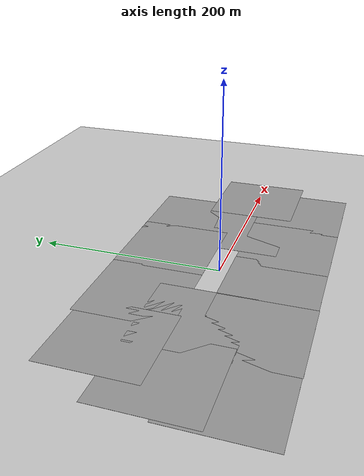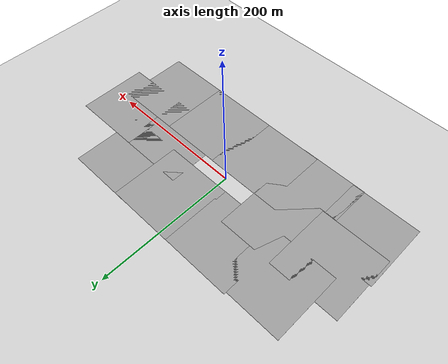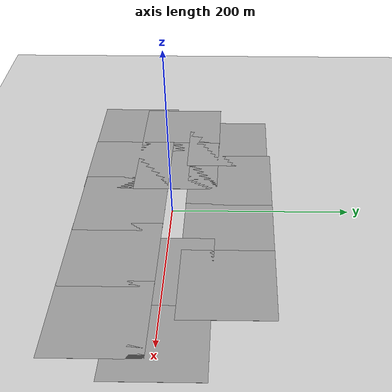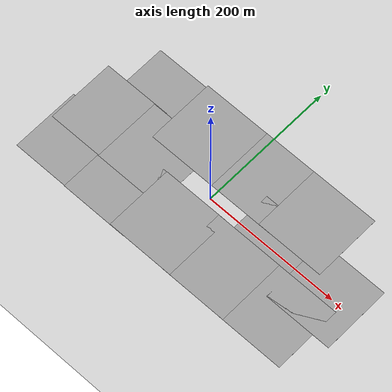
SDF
<sdf version="1.6">
 <world name="default">
  <light name="sun" type="directional">
   <pose>0 0 10 0 -0 0</pose>
   <diffuse>0.8 0.8 0.8 1</diffuse>
   <specular>0.2 0.2 0.2 1</specular>
   <attenuation>
    <range>1000</range>
    <constant>0.9</constant>
    <linear>0.01</linear>
    <quadratic>0.001</quadratic>
   </attenuation>
   <direction>-0.5 0.1 -0.9</direction>
  </light>
  <model name="ground_plane">
   <static>1</static>
   <link name="link">
    <collision name="collision">
     <geometry><plane><normal>0 0 1</normal><size>100 100</size></plane></geometry>
     <surface><friction><ode><mu>100</mu><mu2>50</mu2></ode></friction></surface>
    </collision>
    <visual name="visual">
     <cast_shadows>0</cast_shadows>
     <geometry><plane><normal>0 0 1</normal><size>100 100</size></plane></geometry>
     <material>
      <script><uri>file://media/materials/scripts/gazebo.material</uri><name>Gazebo/Grey</name></script>
     </material>
    </visual>
   </link>
  </model>
  <gravity>0 0 -9.8</gravity>
  <magnetic_field>6e-06 2.3e-05 -4.2e-05</magnetic_field>
  <atmosphere type="adiabatic"/>
  <physics name="default_physics" default="0" type="ode">
   <max_step_size>0.001</max_step_size>
   <real_time_factor>1</real_time_factor>
   <real_time_update_rate>1000</real_time_update_rate>
  </physics>
  <scene><ambient>0.4 0.4 0.4 1</ambient><background>0.7 0.7 0.7 1</background><shadows>1</shadows></scene>
  <audio><device>default</device></audio>
  <spherical_coordinates>
   <surface_model>EARTH_WGS84</surface_model>
   <latitude_deg>0</latitude_deg>
   <longitude_deg>0</longitude_deg>
   <elevation>0</elevation>
   <heading_deg>0</heading_deg>
  </spherical_coordinates>
  <model name="ground_plane_0">
   <static>1</static>
   <link name="link">
    <collision name="collision">
     <geometry><plane><normal>0 0 1</normal><size>100 100</size></plane></geometry>
     <surface>
      <contact><collide_bitmask>65535</collide_bitmask></contact>
      <friction><ode><mu>100</mu><mu2>50</mu2></ode></friction>
     </surface>
    </collision>
    <visual name="visual">
     <cast_shadows>0</cast_shadows>
     <geometry><plane><normal>0 0 1</normal><size>100 100</size></plane></geometry>
     <material>
      <script><uri>file://media/materials/scripts/gazebo.material</uri><name>Gazebo/Grey</name></script>
     </material>
    </visual>
   </link>
   <pose>97.4903 0.04793 0 0 -0 0</pose>
  </model>
  <model name="ground_plane_1">
   <static>1</static>
   <link name="link">
    <collision name="collision">
     <geometry><plane><normal>0 0 1</normal><size>100 100</size></plane></geometry>
     <surface>
      <contact><collide_bitmask>65535</collide_bitmask></contact>
      <friction><ode><mu>100</mu><mu2>50</mu2></ode></friction>
     </surface>
    </collision>
    <visual name="visual">
     <cast_shadows>0</cast_shadows>
     <geometry><plane><normal>0 0 1</normal><size>100 100</size></plane></geometry>
     <material>
      <script><uri>file://media/materials/scripts/gazebo.material</uri><name>Gazebo/Grey</name></script>
     </material>
    </visual>
   </link>
   <pose>189.307 -0.037702 0 0 -0 0</pose>
  </model>
  <model name="ground_plane_2">
   <static>1</static>
   <link name="link">
    <collision name="collision">
     <geometry><plane><normal>0 0 1</normal><size>100 100</size></plane></geometry>
     <surface>
      <contact><collide_bitmask>65535</collide_bitmask></contact>
      <friction><ode><mu>100</mu><mu2>50</mu2></ode></friction>
     </surface>
    </collision>
    <visual name="visual">
     <cast_shadows>0</cast_shadows>
     <geometry><plane><normal>0 0 1</normal><size>100 100</size></plane></geometry>
     <material>
      <script><uri>file://media/materials/scripts/gazebo.material</uri><name>Gazebo/Grey</name></script>
     </material>
    </visual>
   </link>
   <pose>-91.6707 -0.132647 0 0 -0 0</pose>
  </model>
  <model name="ground_plane_3">
   <static>1</static>
   <link name="link">
    <collision name="collision">
     <geometry><plane><normal>0 0 1</normal><size>100 100</size></plane></geometry>
     <surface>
      <contact><collide_bitmask>65535</collide_bitmask></contact>
      <friction><ode><mu>100</mu><mu2>50</mu2></ode></friction>
     </surface>
    </collision>
    <visual name="visual">
     <cast_shadows>0</cast_shadows>
     <geometry><plane><normal>0 0 1</normal><size>100 100</size></plane></geometry>
     <material>
      <script><uri>file://media/materials/scripts/gazebo.material</uri><name>Gazebo/Grey</name></script>
     </material>
    </visual>
   </link>
   <pose>-171.755 0.416002 0 0 -0 0</pose>
  </model>
  <model name="ground_plane_4">
   <static>1</static>
   <link name="link">
    <collision name="collision">
     <geometry><plane><normal>0 0 1</normal><size>100 100</size></plane></geometry>
     <surface>
      <contact><collide_bitmask>65535</collide_bitmask></contact>
      <friction><ode><mu>100</mu><mu2>50</mu2></ode></friction>
     </surface>
    </collision>
    <visual name="visual">
     <cast_shadows>0</cast_shadows>
     <geometry><plane><normal>0 0 1</normal><size>100 100</size></plane></geometry>
     <material>
      <script><uri>file://media/materials/scripts/gazebo.material</uri><name>Gazebo/Grey</name></script>
     </material>
    </visual>
   </link>
   <pose>-92.4556 -59.0521 0 0 -0 0</pose>
  </model>
  <model name="ground_plane_5">
   <static>1</static>
   <link name="link">
    <collision name="collision">
     <geometry><plane><normal>0 0 1</normal><size>100 100</size></plane></geometry>
     <surface>
      <contact><collide_bitmask>65535</collide_bitmask></contact>
      <friction><ode><mu>100</mu><mu2>50</mu2></ode></friction>
     </surface>
    </collision>
    <visual name="visual">
     <cast_shadows>0</cast_shadows>
     <geometry><plane><normal>0 0 1</normal><size>100 100</size></plane></geometry>
     <material>
      <script><uri>file://media/materials/scripts/gazebo.material</uri><name>Gazebo/Grey</name></script>
     </material>
    </visual>
   </link>
   <pose>-14.8442 -58.6163 0 0 -0 0</pose>
  </model>
  <model name="ground_plane_6">
   <static>1</static>
   <link name="link">
    <collision name="collision">
     <geometry><plane><normal>0 0 1</normal><size>100 100</size></plane></geometry>
     <surface>
      <contact><collide_bitmask>65535</collide_bitmask></contact>
      <friction><ode><mu>100</mu><mu2>50</mu2></ode></friction>
     </surface>
    </collision>
    <visual name="visual">
     <cast_shadows>0</cast_shadows>
     <geometry><plane><normal>0 0 1</normal><size>100 100</size></plane></geometry>
     <material>
      <script><uri>file://media/materials/scripts/gazebo.material</uri><name>Gazebo/Grey</name></script>
     </material>
    </visual>
   </link>
   <pose>72.4819 -58.7857 0 0 -0 0</pose>
  </model>
  <model name="ground_plane_7">
   <static>1</static>
   <link name="link">
    <collision name="collision">
     <geometry><plane><normal>0 0 1</normal><size>100 100</size></plane></geometry>
     <surface>
      <contact><collide_bitmask>65535</collide_bitmask></contact>
      <friction><ode><mu>100</mu><mu2>50</mu2></ode></friction>
     </surface>
    </collision>
    <visual name="visual">
     <cast_shadows>0</cast_shadows>
     <geometry><plane><normal>0 0 1</normal><size>100 100</size></plane></geometry>
     <material>
      <script><uri>file://media/materials/scripts/gazebo.material</uri><name>Gazebo/Grey</name></script>
     </material>
    </visual>
   </link>
   <pose>164.143 -58.8841 0 0 -0 0</pose>
  </model>
  <model name="ground_plane_8">
   <static>1</static>
   <link name="link">
    <collision name="collision">
     <geometry><plane><normal>0 0 1</normal><size>100 100</size></plane></geometry>
     <surface>
      <contact><collide_bitmask>65535</collide_bitmask></contact>
      <friction><ode><mu>100</mu><mu2>50</mu2></ode></friction>
     </surface>
    </collision>
    <visual name="visual">
     <cast_shadows>0</cast_shadows>
     <geometry><plane><normal>0 0 1</normal><size>100 100</size></plane></geometry>
     <material>
      <script><uri>file://media/materials/scripts/gazebo.material</uri><name>Gazebo/Grey</name></script>
     </material>
    </visual>
   </link>
   <pose>116.309 64.9552 0 0 -0 0</pose>
  </model>
  <model name="ground_plane_9">
   <static>1</static>
   <link name="link">
    <collision name="collision">
     <geometry><plane><normal>0 0 1</normal><size>100 100</size></plane></geometry>
     <surface>
      <contact><collide_bitmask>65535</collide_bitmask></contact>
      <friction><ode><mu>100</mu><mu2>50</mu2></ode></friction>
     </surface>
    </collision>
    <visual name="visual">
     <cast_shadows>0</cast_shadows>
     <geometry><plane><normal>0 0 1</normal><size>100 100</size></plane></geometry>
     <material>
      <script><uri>file://media/materials/scripts/gazebo.material</uri><name>Gazebo/Grey</name></script>
     </material>
    </visual>
   </link>
   <pose>36.0215 64.7784 0 0 -0 0</pose>
  </model>
  <model name="ground_plane_10">
   <static>1</static>
   <link name="link">
    <collision name="collision">
     <geometry><plane><normal>0 0 1</normal><size>100 100</size></plane></geometry>
     <surface>
      <contact><collide_bitmask>65535</collide_bitmask></contact>
      <friction><ode><mu>100</mu><mu2>50</mu2></ode></friction>
     </surface>
    </collision>
    <visual name="visual">
     <cast_shadows>0</cast_shadows>
     <geometry><plane><normal>0 0 1</normal><size>100 100</size></plane></geometry>
     <material>
      <script><uri>file://media/materials/scripts/gazebo.material</uri><name>Gazebo/Grey</name></script>
     </material>
    </visual>
   </link>
   <pose>-61.7703 64.6166 0 0 -0 0</pose>
  </model>
  <model name="ground_plane_11">
   <static>1</static>
   <link name="link">
    <collision name="collision">
     <geometry><plane><normal>0 0 1</normal><size>100 100</size></plane></geometry>
     <surface>
      <contact><collide_bitmask>65535</collide_bitmask></contact>
      <friction><ode><mu>100</mu><mu2>50</mu2></ode></friction>
     </surface>
    </collision>
    <visual name="visual">
     <cast_shadows>0</cast_shadows>
     <geometry><plane><normal>0 0 1</normal><size>100 100</size></plane></geometry>
     <material>
      <script><uri>file://media/materials/scripts/gazebo.material</uri><name>Gazebo/Grey</name></script>
     </material>
    </visual>
   </link>
   <pose>-140.039 61.2243 0 0 -0 0</pose>
  </model>
  <model name="ground_plane_12">
   <static>1</static>
   <link name="link">
    <collision name="collision">
     <geometry><plane><normal>0 0 1</normal><size>100 100</size></plane></geometry>
     <surface>
      <contact><collide_bitmask>65535</collide_bitmask></contact>
      <friction><ode><mu>100</mu><mu2>50</mu2></ode></friction>
     </surface>
    </collision>
    <visual name="visual">
     <cast_shadows>0</cast_shadows>
     <geometry><plane><normal>0 0 1</normal><size>100 100</size></plane></geometry>
     <material>
      <script><uri>file://media/materials/scripts/gazebo.material</uri><name>Gazebo/Grey</name></script>
     </material>
    </visual>
   </link>
   <pose>-174.805 -58.5343 0 0 -0 0</pose>
  </model>
 </world>
</sdf>
